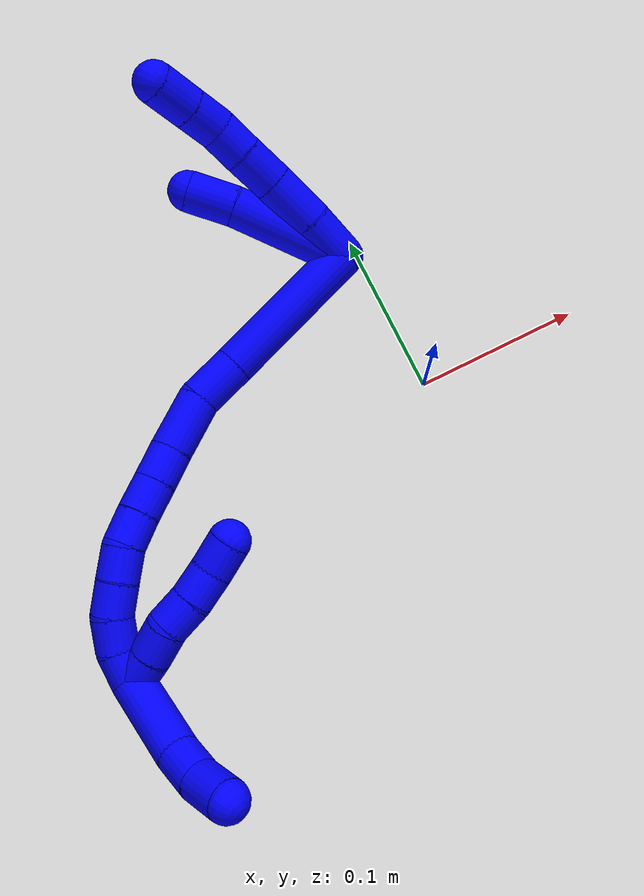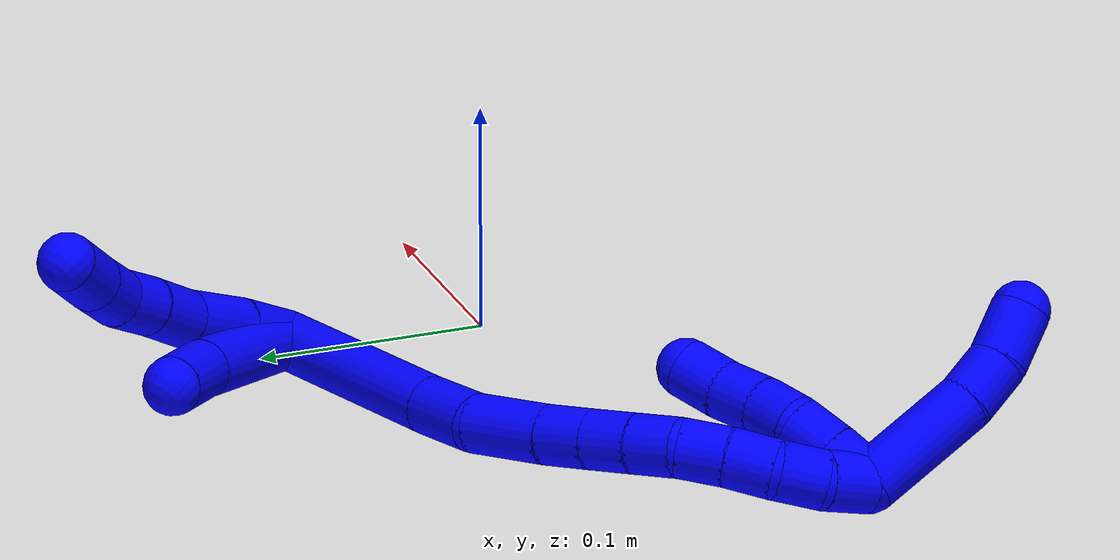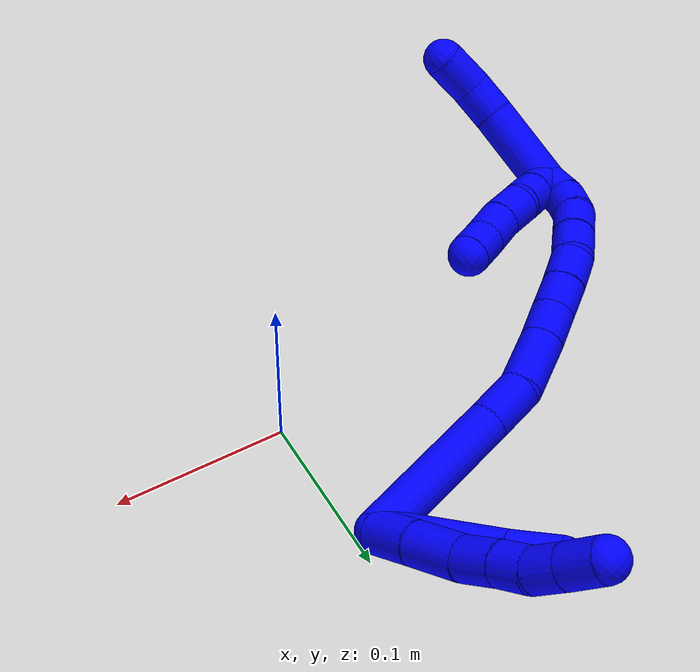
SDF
<sdf version="1.7">
 <world name="default">
  <model name="1">
   <static>0</static>
   <link name="1">
    <collision name="collision-cylinder-e_1_2_8">
     <pose>0.006324 -0.010296 0.007687 0.929464 0.457334 0.232319</pose>
     <geometry><cylinder><radius>0.0125</radius><length>0.028642</length></cylinder></geometry>
     <surface>
      <friction><ode><mu>1.16</mu><mu2>1.16</mu2><slip1>0</slip1><slip2>0</slip2></ode></friction>
      <contact><ode><kp>1e+06</kp><kd>1</kd><max_vel>0</max_vel><min_depth>0.001</min_depth></ode></contact>
     </surface>
    </collision>
    <visual name="visual-cylinder-e_1_2_8">
     <pose>0.006324 -0.010296 0.007687 0.929464 0.457334 0.232319</pose>
     <geometry><cylinder><radius>0.0125</radius><length>0.028642</length></cylinder></geometry>
     <material><ambient>0 0 1 1</ambient></material>
    </visual>
    <collision name="collision-cylinder-e_2_8_9">
     <pose>0.01892 -0.031805 0.025046 0.859056 0.400668 0.185487</pose>
     <geometry><cylinder><radius>0.0125</radius><length>0.032163</length></cylinder></geometry>
     <surface>
      <friction><ode><mu>1.16</mu><mu2>1.16</mu2><slip1>0</slip1><slip2>0</slip2></ode></friction>
      <contact><ode><kp>1e+06</kp><kd>1</kd><max_vel>0</max_vel><min_depth>0.001</min_depth></ode></contact>
     </surface>
    </collision>
    <visual name="visual-cylinder-e_2_8_9">
     <pose>0.01892 -0.031805 0.025046 0.859056 0.400668 0.185487</pose>
     <geometry><cylinder><radius>0.0125</radius><length>0.032163</length></cylinder></geometry>
     <material><ambient>0 0 1 1</ambient></material>
    </visual>
    <collision name="collision-cylinder-e_3_9_10">
     <pose>0.029499 -0.052679 0.040673 1.0184 0.362728 0.204054</pose>
     <geometry><cylinder><radius>0.0125</radius><length>0.024278</length></cylinder></geometry>
     <surface>
      <friction><ode><mu>1.16</mu><mu2>1.16</mu2><slip1>0</slip1><slip2>0</slip2></ode></friction>
      <contact><ode><kp>1e+06</kp><kd>1</kd><max_vel>0</max_vel><min_depth>0.001</min_depth></ode></contact>
     </surface>
    </collision>
    <visual name="visual-cylinder-e_3_9_10">
     <pose>0.029499 -0.052679 0.040673 1.0184 0.362728 0.204054</pose>
     <geometry><cylinder><radius>0.0125</radius><length>0.024278</length></cylinder></geometry>
     <material><ambient>0 0 1 1</ambient></material>
    </visual>
    <collision name="collision-cylinder-e_4_10_11">
     <pose>0.037602 -0.069927 0.052034 0.951741 0.386915 0.201249</pose>
     <geometry><cylinder><radius>0.0125</radius><length>0.020117</length></cylinder></geometry>
     <surface>
      <friction><ode><mu>1.16</mu><mu2>1.16</mu2><slip1>0</slip1><slip2>0</slip2></ode></friction>
      <contact><ode><kp>1e+06</kp><kd>1</kd><max_vel>0</max_vel><min_depth>0.001</min_depth></ode></contact>
     </surface>
    </collision>
    <visual name="visual-cylinder-e_4_10_11">
     <pose>0.037602 -0.069927 0.052034 0.951741 0.386915 0.201249</pose>
     <geometry><cylinder><radius>0.0125</radius><length>0.020117</length></cylinder></geometry>
     <material><ambient>0 0 1 1</ambient></material>
    </visual>
    <collision name="collision-cylinder-e_5_11_12">
     <pose>0.043876 -0.086942 0.061214 1.18991 0.239373 0.162417</pose>
     <geometry><cylinder><radius>0.0125</radius><length>0.020909</length></cylinder></geometry>
     <surface>
      <friction><ode><mu>1.16</mu><mu2>1.16</mu2><slip1>0</slip1><slip2>0</slip2></ode></friction>
      <contact><ode><kp>1e+06</kp><kd>1</kd><max_vel>0</max_vel><min_depth>0.001</min_depth></ode></contact>
     </surface>
    </collision>
    <visual name="visual-cylinder-e_5_11_12">
     <pose>0.043876 -0.086942 0.061214 1.18991 0.239373 0.162417</pose>
     <geometry><cylinder><radius>0.0125</radius><length>0.020909</length></cylinder></geometry>
     <material><ambient>0 0 1 1</ambient></material>
    </visual>
    <collision name="collision-cylinder-e_6_12_6">
     <pose>0.049162 -0.107298 0.068914 1.22608 0.237268 0.167304</pose>
     <geometry><cylinder><radius>0.0125</radius><length>0.023891</length></cylinder></geometry>
     <surface>
      <friction><ode><mu>1.16</mu><mu2>1.16</mu2><slip1>0</slip1><slip2>0</slip2></ode></friction>
      <contact><ode><kp>1e+06</kp><kd>1</kd><max_vel>0</max_vel><min_depth>0.001</min_depth></ode></contact>
     </surface>
    </collision>
    <visual name="visual-cylinder-e_6_12_6">
     <pose>0.049162 -0.107298 0.068914 1.22608 0.237268 0.167304</pose>
     <geometry><cylinder><radius>0.0125</radius><length>0.023891</length></cylinder></geometry>
     <material><ambient>0 0 1 1</ambient></material>
    </visual>
    <collision name="collision-cylinder-e_1_2_13">
     <pose>0.001615 -0.024244 0.025906 0.75226 0.045493 0.017969</pose>
     <geometry><cylinder><radius>0.0125</radius><length>0.071036</length></cylinder></geometry>
     <surface>
      <friction><ode><mu>1.16</mu><mu2>1.16</mu2><slip1>0</slip1><slip2>0</slip2></ode></friction>
      <contact><ode><kp>1e+06</kp><kd>1</kd><max_vel>0</max_vel><min_depth>0.001</min_depth></ode></contact>
     </surface>
    </collision>
    <visual name="visual-cylinder-e_1_2_13">
     <pose>0.001615 -0.024244 0.025906 0.75226 0.045493 0.017969</pose>
     <geometry><cylinder><radius>0.0125</radius><length>0.071036</length></cylinder></geometry>
     <material><ambient>0 0 1 1</ambient></material>
    </visual>
    <collision name="collision-cylinder-e_2_13_5">
     <pose>0.002311 -0.05822 0.062498 0.738795 -0.063538 -0.024607</pose>
     <geometry><cylinder><radius>0.0125</radius><length>0.028964</length></cylinder></geometry>
     <surface>
      <friction><ode><mu>1.16</mu><mu2>1.16</mu2><slip1>0</slip1><slip2>0</slip2></ode></friction>
      <contact><ode><kp>1e+06</kp><kd>1</kd><max_vel>0</max_vel><min_depth>0.001</min_depth></ode></contact>
     </surface>
    </collision>
    <visual name="visual-cylinder-e_2_13_5">
     <pose>0.002311 -0.05822 0.062498 0.738795 -0.063538 -0.024607</pose>
     <geometry><cylinder><radius>0.0125</radius><length>0.028964</length></cylinder></geometry>
     <material><ambient>0 0 1 1</ambient></material>
    </visual>
    <collision name="collision-cylinder-e_1_2_14">
     <pose>-0.041233 -0.022362 0.004856 1.35695 -1.06414 -0.88621</pose>
     <geometry><cylinder><radius>0.0125</radius><length>0.094314</length></cylinder></geometry>
     <surface>
      <friction><ode><mu>1.16</mu><mu2>1.16</mu2><slip1>0</slip1><slip2>0</slip2></ode></friction>
      <contact><ode><kp>1e+06</kp><kd>1</kd><max_vel>0</max_vel><min_depth>0.001</min_depth></ode></contact>
     </surface>
    </collision>
    <visual name="visual-cylinder-e_1_2_14">
     <pose>-0.041233 -0.022362 0.004856 1.35695 -1.06414 -0.88621</pose>
     <geometry><cylinder><radius>0.0125</radius><length>0.094314</length></cylinder></geometry>
     <material><ambient>0 0 1 1</ambient></material>
    </visual>
    <collision name="collision-cylinder-e_2_14_15">
     <pose>-0.094902 -0.052241 0.010937 1.40932 -1.0213 -0.889077</pose>
     <geometry><cylinder><radius>0.0125</radius><length>0.029167</length></cylinder></geometry>
     <surface>
      <friction><ode><mu>1.16</mu><mu2>1.16</mu2><slip1>0</slip1><slip2>0</slip2></ode></friction>
      <contact><ode><kp>1e+06</kp><kd>1</kd><max_vel>0</max_vel><min_depth>0.001</min_depth></ode></contact>
     </surface>
    </collision>
    <visual name="visual-cylinder-e_2_14_15">
     <pose>-0.094902 -0.052241 0.010937 1.40932 -1.0213 -0.889077</pose>
     <geometry><cylinder><radius>0.0125</radius><length>0.029167</length></cylinder></geometry>
     <material><ambient>0 0 1 1</ambient></material>
    </visual>
    <collision name="collision-cylinder-e_3_15_16">
     <pose>-0.123029 -0.06656 0.008817 2.02779 -1.12083 -1.57862</pose>
     <geometry><cylinder><radius>0.0125</radius><length>0.03485</length></cylinder></geometry>
     <surface>
      <friction><ode><mu>1.16</mu><mu2>1.16</mu2><slip1>0</slip1><slip2>0</slip2></ode></friction>
      <contact><ode><kp>1e+06</kp><kd>1</kd><max_vel>0</max_vel><min_depth>0.001</min_depth></ode></contact>
     </surface>
    </collision>
    <visual name="visual-cylinder-e_3_15_16">
     <pose>-0.123029 -0.06656 0.008817 2.02779 -1.12083 -1.57862</pose>
     <geometry><cylinder><radius>0.0125</radius><length>0.03485</length></cylinder></geometry>
     <material><ambient>0 0 1 1</ambient></material>
    </visual>
    <collision name="collision-cylinder-e_4_16_17">
     <pose>-0.148048 -0.077518 0.002904 2.12435 -1.08823 -1.65244</pose>
     <geometry><cylinder><radius>0.0125</radius><length>0.021062</length></cylinder></geometry>
     <surface>
      <friction><ode><mu>1.16</mu><mu2>1.16</mu2><slip1>0</slip1><slip2>0</slip2></ode></friction>
      <contact><ode><kp>1e+06</kp><kd>1</kd><max_vel>0</max_vel><min_depth>0.001</min_depth></ode></contact>
     </surface>
    </collision>
    <visual name="visual-cylinder-e_4_16_17">
     <pose>-0.148048 -0.077518 0.002904 2.12435 -1.08823 -1.65244</pose>
     <geometry><cylinder><radius>0.0125</radius><length>0.021062</length></cylinder></geometry>
     <material><ambient>0 0 1 1</ambient></material>
    </visual>
    <collision name="collision-cylinder-e_5_17_18">
     <pose>-0.166395 -0.085851 -0.002136 2.10508 -1.07724 -1.61755</pose>
     <geometry><cylinder><radius>0.0125</radius><length>0.020482</length></cylinder></geometry>
     <surface>
      <friction><ode><mu>1.16</mu><mu2>1.16</mu2><slip1>0</slip1><slip2>0</slip2></ode></friction>
      <contact><ode><kp>1e+06</kp><kd>1</kd><max_vel>0</max_vel><min_depth>0.001</min_depth></ode></contact>
     </surface>
    </collision>
    <visual name="visual-cylinder-e_5_17_18">
     <pose>-0.166395 -0.085851 -0.002136 2.10508 -1.07724 -1.61755</pose>
     <geometry><cylinder><radius>0.0125</radius><length>0.020482</length></cylinder></geometry>
     <material><ambient>0 0 1 1</ambient></material>
    </visual>
    <collision name="collision-cylinder-e_6_18_19">
     <pose>-0.184355 -0.09371 -0.007354 2.21157 -1.09602 -1.76561</pose>
     <geometry><cylinder><radius>0.0125</radius><length>0.020107</length></cylinder></geometry>
     <surface>
      <friction><ode><mu>1.16</mu><mu2>1.16</mu2><slip1>0</slip1><slip2>0</slip2></ode></friction>
      <contact><ode><kp>1e+06</kp><kd>1</kd><max_vel>0</max_vel><min_depth>0.001</min_depth></ode></contact>
     </surface>
    </collision>
    <visual name="visual-cylinder-e_6_18_19">
     <pose>-0.184355 -0.09371 -0.007354 2.21157 -1.09602 -1.76561</pose>
     <geometry><cylinder><radius>0.0125</radius><length>0.020107</length></cylinder></geometry>
     <material><ambient>0 0 1 1</ambient></material>
    </visual>
    <collision name="collision-cylinder-e_7_19_20">
     <pose>-0.202646 -0.098268 -0.013559 2.894 -1.20641 -2.78418</pose>
     <geometry><cylinder><radius>0.0125</radius><length>0.020014</length></cylinder></geometry>
     <surface>
      <friction><ode><mu>1.16</mu><mu2>1.16</mu2><slip1>0</slip1><slip2>0</slip2></ode></friction>
      <contact><ode><kp>1e+06</kp><kd>1</kd><max_vel>0</max_vel><min_depth>0.001</min_depth></ode></contact>
     </surface>
    </collision>
    <visual name="visual-cylinder-e_7_19_20">
     <pose>-0.202646 -0.098268 -0.013559 2.894 -1.20641 -2.78418</pose>
     <geometry><cylinder><radius>0.0125</radius><length>0.020014</length></cylinder></geometry>
     <material><ambient>0 0 1 1</ambient></material>
    </visual>
    <collision name="collision-cylinder-e_8_20_21">
     <pose>-0.221519 -0.099381 -0.020061 3.0634 -1.26046 -3.03446</pose>
     <geometry><cylinder><radius>0.0125</radius><length>0.02</length></cylinder></geometry>
     <surface>
      <friction><ode><mu>1.16</mu><mu2>1.16</mu2><slip1>0</slip1><slip2>0</slip2></ode></friction>
      <contact><ode><kp>1e+06</kp><kd>1</kd><max_vel>0</max_vel><min_depth>0.001</min_depth></ode></contact>
     </surface>
    </collision>
    <visual name="visual-cylinder-e_8_20_21">
     <pose>-0.221519 -0.099381 -0.020061 3.0634 -1.26046 -3.03446</pose>
     <geometry><cylinder><radius>0.0125</radius><length>0.02</length></cylinder></geometry>
     <material><ambient>0 0 1 1</ambient></material>
    </visual>
    <collision name="collision-cylinder-e_9_21_22">
     <pose>-0.239585 -0.097289 -0.027752 -2.67677 -1.02422 2.34454</pose>
     <geometry><cylinder><radius>0.0125</radius><length>0.020002</length></cylinder></geometry>
     <surface>
      <friction><ode><mu>1.16</mu><mu2>1.16</mu2><slip1>0</slip1><slip2>0</slip2></ode></friction>
      <contact><ode><kp>1e+06</kp><kd>1</kd><max_vel>0</max_vel><min_depth>0.001</min_depth></ode></contact>
     </surface>
    </collision>
    <visual name="visual-cylinder-e_9_21_22">
     <pose>-0.239585 -0.097289 -0.027752 -2.67677 -1.02422 2.34454</pose>
     <geometry><cylinder><radius>0.0125</radius><length>0.020002</length></cylinder></geometry>
     <material><ambient>0 0 1 1</ambient></material>
    </visual>
    <collision name="collision-cylinder-e_10_22_1">
     <pose>-0.254886 -0.091223 -0.038755 -2.61025 -0.741884 1.92069</pose>
     <geometry><cylinder><radius>0.0125</radius><length>0.020003</length></cylinder></geometry>
     <surface>
      <friction><ode><mu>1.16</mu><mu2>1.16</mu2><slip1>0</slip1><slip2>0</slip2></ode></friction>
      <contact><ode><kp>1e+06</kp><kd>1</kd><max_vel>0</max_vel><min_depth>0.001</min_depth></ode></contact>
     </surface>
    </collision>
    <visual name="visual-cylinder-e_10_22_1">
     <pose>-0.254886 -0.091223 -0.038755 -2.61025 -0.741884 1.92069</pose>
     <geometry><cylinder><radius>0.0125</radius><length>0.020003</length></cylinder></geometry>
     <material><ambient>0 0 1 1</ambient></material>
    </visual>
    <collision name="collision-cylinder-e_1_1_23">
     <pose>-0.267638 -0.088844 -0.071177 3.08957 -0.225732 -2.69038</pose>
     <geometry><cylinder><radius>0.0125</radius><length>0.05356</length></cylinder></geometry>
     <surface>
      <friction><ode><mu>1.16</mu><mu2>1.16</mu2><slip1>0</slip1><slip2>0</slip2></ode></friction>
      <contact><ode><kp>1e+06</kp><kd>1</kd><max_vel>0</max_vel><min_depth>0.001</min_depth></ode></contact>
     </surface>
    </collision>
    <visual name="visual-cylinder-e_1_1_23">
     <pose>-0.267638 -0.088844 -0.071177 3.08957 -0.225732 -2.69038</pose>
     <geometry><cylinder><radius>0.0125</radius><length>0.05356</length></cylinder></geometry>
     <material><ambient>0 0 1 1</ambient></material>
    </visual>
    <collision name="collision-cylinder-e_2_23_24">
     <pose>-0.274195 -0.091274 -0.108071 3.04282 -0.051679 -0.963605</pose>
     <geometry><cylinder><radius>0.0125</radius><length>0.021794</length></cylinder></geometry>
     <surface>
      <friction><ode><mu>1.16</mu><mu2>1.16</mu2><slip1>0</slip1><slip2>0</slip2></ode></friction>
      <contact><ode><kp>1e+06</kp><kd>1</kd><max_vel>0</max_vel><min_depth>0.001</min_depth></ode></contact>
     </surface>
    </collision>
    <visual name="visual-cylinder-e_2_23_24">
     <pose>-0.274195 -0.091274 -0.108071 3.04282 -0.051679 -0.963605</pose>
     <geometry><cylinder><radius>0.0125</radius><length>0.021794</length></cylinder></geometry>
     <material><ambient>0 0 1 1</ambient></material>
    </visual>
    <collision name="collision-cylinder-e_3_24_4">
     <pose>-0.272412 -0.093971 -0.130889 3.00704 0.191566 1.91839</pose>
     <geometry><cylinder><radius>0.0125</radius><length>0.024646</length></cylinder></geometry>
     <surface>
      <friction><ode><mu>1.16</mu><mu2>1.16</mu2><slip1>0</slip1><slip2>0</slip2></ode></friction>
      <contact><ode><kp>1e+06</kp><kd>1</kd><max_vel>0</max_vel><min_depth>0.001</min_depth></ode></contact>
     </surface>
    </collision>
    <visual name="visual-cylinder-e_3_24_4">
     <pose>-0.272412 -0.093971 -0.130889 3.00704 0.191566 1.91839</pose>
     <geometry><cylinder><radius>0.0125</radius><length>0.024646</length></cylinder></geometry>
     <material><ambient>0 0 1 1</ambient></material>
    </visual>
    <collision name="collision-cylinder-e_1_1_25">
     <pose>-0.251868 -0.086678 -0.047054 -2.74661 1.35879 -2.65587</pose>
     <geometry><cylinder><radius>0.0125</radius><length>0.02</length></cylinder></geometry>
     <surface>
      <friction><ode><mu>1.16</mu><mu2>1.16</mu2><slip1>0</slip1><slip2>0</slip2></ode></friction>
      <contact><ode><kp>1e+06</kp><kd>1</kd><max_vel>0</max_vel><min_depth>0.001</min_depth></ode></contact>
     </surface>
    </collision>
    <visual name="visual-cylinder-e_1_1_25">
     <pose>-0.251868 -0.086678 -0.047054 -2.74661 1.35879 -2.65587</pose>
     <geometry><cylinder><radius>0.0125</radius><length>0.02</length></cylinder></geometry>
     <material><ambient>0 0 1 1</ambient></material>
    </visual>
    <collision name="collision-cylinder-e_2_25_26">
     <pose>-0.232191 -0.085245 -0.050251 -2.68117 1.43023 -2.61442</pose>
     <geometry><cylinder><radius>0.0125</radius><length>0.02</length></cylinder></geometry>
     <surface>
      <friction><ode><mu>1.16</mu><mu2>1.16</mu2><slip1>0</slip1><slip2>0</slip2></ode></friction>
      <contact><ode><kp>1e+06</kp><kd>1</kd><max_vel>0</max_vel><min_depth>0.001</min_depth></ode></contact>
     </surface>
    </collision>
    <visual name="visual-cylinder-e_2_25_26">
     <pose>-0.232191 -0.085245 -0.050251 -2.68117 1.43023 -2.61442</pose>
     <geometry><cylinder><radius>0.0125</radius><length>0.02</length></cylinder></geometry>
     <material><ambient>0 0 1 1</ambient></material>
    </visual>
    <collision name="collision-cylinder-e_3_26_27">
     <pose>-0.213159 -0.0808 -0.052926 -1.92635 1.15075 -1.50117</pose>
     <geometry><cylinder><radius>0.0125</radius><length>0.02</length></cylinder></geometry>
     <surface>
      <friction><ode><mu>1.16</mu><mu2>1.16</mu2><slip1>0</slip1><slip2>0</slip2></ode></friction>
      <contact><ode><kp>1e+06</kp><kd>1</kd><max_vel>0</max_vel><min_depth>0.001</min_depth></ode></contact>
     </surface>
    </collision>
    <visual name="visual-cylinder-e_3_26_27">
     <pose>-0.213159 -0.0808 -0.052926 -1.92635 1.15075 -1.50117</pose>
     <geometry><cylinder><radius>0.0125</radius><length>0.02</length></cylinder></geometry>
     <material><ambient>0 0 1 1</ambient></material>
    </visual>
    <collision name="collision-cylinder-e_4_27_28">
     <pose>-0.194576 -0.073713 -0.054438 -1.59928 1.23815 -1.2652</pose>
     <geometry><cylinder><radius>0.0125</radius><length>0.02</length></cylinder></geometry>
     <surface>
      <friction><ode><mu>1.16</mu><mu2>1.16</mu2><slip1>0</slip1><slip2>0</slip2></ode></friction>
      <contact><ode><kp>1e+06</kp><kd>1</kd><max_vel>0</max_vel><min_depth>0.001</min_depth></ode></contact>
     </surface>
    </collision>
    <visual name="visual-cylinder-e_4_27_28">
     <pose>-0.194576 -0.073713 -0.054438 -1.59928 1.23815 -1.2652</pose>
     <geometry><cylinder><radius>0.0125</radius><length>0.02</length></cylinder></geometry>
     <material><ambient>0 0 1 1</ambient></material>
    </visual>
    <collision name="collision-cylinder-e_5_28_3">
     <pose>-0.175322 -0.068559 -0.055116 -1.87062 1.37171 -1.67462</pose>
     <geometry><cylinder><radius>0.0125</radius><length>0.02</length></cylinder></geometry>
     <surface>
      <friction><ode><mu>1.16</mu><mu2>1.16</mu2><slip1>0</slip1><slip2>0</slip2></ode></friction>
      <contact><ode><kp>1e+06</kp><kd>1</kd><max_vel>0</max_vel><min_depth>0.001</min_depth></ode></contact>
     </surface>
    </collision>
    <visual name="visual-cylinder-e_5_28_3">
     <pose>-0.175322 -0.068559 -0.055116 -1.87062 1.37171 -1.67462</pose>
     <geometry><cylinder><radius>0.0125</radius><length>0.02</length></cylinder></geometry>
     <material><ambient>0 0 1 1</ambient></material>
    </visual>
    <collision name="collision-sphere-3">
     <pose>-0.165519 -0.066669 -0.0557 0 -0 0</pose>
     <geometry><sphere><radius>0.0125</radius></sphere></geometry>
     <surface>
      <friction><ode><mu>1.16</mu><mu2>1.16</mu2><slip1>0</slip1><slip2>0</slip2></ode></friction>
      <contact><ode><kp>1e+06</kp><kd>1</kd><max_vel>0</max_vel><min_depth>0.001</min_depth></ode></contact>
     </surface>
    </collision>
    <visual name="visual-sphere-3">
     <pose>-0.165519 -0.066669 -0.0557 0 -0 0</pose>
     <geometry><sphere><radius>0.0125</radius></sphere></geometry>
     <material><ambient>0 0 1 1</ambient></material>
    </visual>
    <collision name="collision-sphere-28">
     <pose>-0.185124 -0.070448 -0.054531 0 -0 0</pose>
     <geometry><sphere><radius>0.0125</radius></sphere></geometry>
     <surface>
      <friction><ode><mu>1.16</mu><mu2>1.16</mu2><slip1>0</slip1><slip2>0</slip2></ode></friction>
      <contact><ode><kp>1e+06</kp><kd>1</kd><max_vel>0</max_vel><min_depth>0.001</min_depth></ode></contact>
     </surface>
    </collision>
    <visual name="visual-sphere-28">
     <pose>-0.185124 -0.070448 -0.054531 0 -0 0</pose>
     <geometry><sphere><radius>0.0125</radius></sphere></geometry>
     <material><ambient>0 0 1 1</ambient></material>
    </visual>
    <collision name="collision-sphere-27">
     <pose>-0.204028 -0.076977 -0.054345 0 -0 0</pose>
     <geometry><sphere><radius>0.0125</radius></sphere></geometry>
     <surface>
      <friction><ode><mu>1.16</mu><mu2>1.16</mu2><slip1>0</slip1><slip2>0</slip2></ode></friction>
      <contact><ode><kp>1e+06</kp><kd>1</kd><max_vel>0</max_vel><min_depth>0.001</min_depth></ode></contact>
     </surface>
    </collision>
    <visual name="visual-sphere-27">
     <pose>-0.204028 -0.076977 -0.054345 0 -0 0</pose>
     <geometry><sphere><radius>0.0125</radius></sphere></geometry>
     <material><ambient>0 0 1 1</ambient></material>
    </visual>
    <collision name="collision-sphere-26">
     <pose>-0.222289 -0.084623 -0.051506 0 -0 0</pose>
     <geometry><sphere><radius>0.0125</radius></sphere></geometry>
     <surface>
      <friction><ode><mu>1.16</mu><mu2>1.16</mu2><slip1>0</slip1><slip2>0</slip2></ode></friction>
      <contact><ode><kp>1e+06</kp><kd>1</kd><max_vel>0</max_vel><min_depth>0.001</min_depth></ode></contact>
     </surface>
    </collision>
    <visual name="visual-sphere-26">
     <pose>-0.222289 -0.084623 -0.051506 0 -0 0</pose>
     <geometry><sphere><radius>0.0125</radius></sphere></geometry>
     <material><ambient>0 0 1 1</ambient></material>
    </visual>
    <collision name="collision-sphere-25">
     <pose>-0.242092 -0.085868 -0.048996 0 -0 0</pose>
     <geometry><sphere><radius>0.0125</radius></sphere></geometry>
     <surface>
      <friction><ode><mu>1.16</mu><mu2>1.16</mu2><slip1>0</slip1><slip2>0</slip2></ode></friction>
      <contact><ode><kp>1e+06</kp><kd>1</kd><max_vel>0</max_vel><min_depth>0.001</min_depth></ode></contact>
     </surface>
    </collision>
    <visual name="visual-sphere-25">
     <pose>-0.242092 -0.085868 -0.048996 0 -0 0</pose>
     <geometry><sphere><radius>0.0125</radius></sphere></geometry>
     <material><ambient>0 0 1 1</ambient></material>
    </visual>
    <collision name="collision-sphere-4">
     <pose>-0.270065 -0.095593 -0.142877 0 -0 0</pose>
     <geometry><sphere><radius>0.0125</radius></sphere></geometry>
     <surface>
      <friction><ode><mu>1.16</mu><mu2>1.16</mu2><slip1>0</slip1><slip2>0</slip2></ode></friction>
      <contact><ode><kp>1e+06</kp><kd>1</kd><max_vel>0</max_vel><min_depth>0.001</min_depth></ode></contact>
     </surface>
    </collision>
    <visual name="visual-sphere-4">
     <pose>-0.270065 -0.095593 -0.142877 0 -0 0</pose>
     <geometry><sphere><radius>0.0125</radius></sphere></geometry>
     <material><ambient>0 0 1 1</ambient></material>
    </visual>
    <collision name="collision-sphere-24">
     <pose>-0.274758 -0.092348 -0.118901 0 -0 0</pose>
     <geometry><sphere><radius>0.0125</radius></sphere></geometry>
     <surface>
      <friction><ode><mu>1.16</mu><mu2>1.16</mu2><slip1>0</slip1><slip2>0</slip2></ode></friction>
      <contact><ode><kp>1e+06</kp><kd>1</kd><max_vel>0</max_vel><min_depth>0.001</min_depth></ode></contact>
     </surface>
    </collision>
    <visual name="visual-sphere-24">
     <pose>-0.274758 -0.092348 -0.118901 0 -0 0</pose>
     <geometry><sphere><radius>0.0125</radius></sphere></geometry>
     <material><ambient>0 0 1 1</ambient></material>
    </visual>
    <collision name="collision-sphere-23">
     <pose>-0.273632 -0.090201 -0.097242 0 -0 0</pose>
     <geometry><sphere><radius>0.0125</radius></sphere></geometry>
     <surface>
      <friction><ode><mu>1.16</mu><mu2>1.16</mu2><slip1>0</slip1><slip2>0</slip2></ode></friction>
      <contact><ode><kp>1e+06</kp><kd>1</kd><max_vel>0</max_vel><min_depth>0.001</min_depth></ode></contact>
     </surface>
    </collision>
    <visual name="visual-sphere-23">
     <pose>-0.273632 -0.090201 -0.097242 0 -0 0</pose>
     <geometry><sphere><radius>0.0125</radius></sphere></geometry>
     <material><ambient>0 0 1 1</ambient></material>
    </visual>
    <collision name="collision-sphere-1">
     <pose>-0.261644 -0.087487 -0.045111 0 -0 0</pose>
     <geometry><sphere><radius>0.0125</radius></sphere></geometry>
     <surface>
      <friction><ode><mu>1.16</mu><mu2>1.16</mu2><slip1>0</slip1><slip2>0</slip2></ode></friction>
      <contact><ode><kp>1e+06</kp><kd>1</kd><max_vel>0</max_vel><min_depth>0.001</min_depth></ode></contact>
     </surface>
    </collision>
    <visual name="visual-sphere-1">
     <pose>-0.261644 -0.087487 -0.045111 0 -0 0</pose>
     <geometry><sphere><radius>0.0125</radius></sphere></geometry>
     <material><ambient>0 0 1 1</ambient></material>
    </visual>
    <collision name="collision-sphere-22">
     <pose>-0.248129 -0.094959 -0.032398 0 -0 0</pose>
     <geometry><sphere><radius>0.0125</radius></sphere></geometry>
     <surface>
      <friction><ode><mu>1.16</mu><mu2>1.16</mu2><slip1>0</slip1><slip2>0</slip2></ode></friction>
      <contact><ode><kp>1e+06</kp><kd>1</kd><max_vel>0</max_vel><min_depth>0.001</min_depth></ode></contact>
     </surface>
    </collision>
    <visual name="visual-sphere-22">
     <pose>-0.248129 -0.094959 -0.032398 0 -0 0</pose>
     <geometry><sphere><radius>0.0125</radius></sphere></geometry>
     <material><ambient>0 0 1 1</ambient></material>
    </visual>
    <collision name="collision-sphere-21">
     <pose>-0.231041 -0.099619 -0.023105 0 -0 0</pose>
     <geometry><sphere><radius>0.0125</radius></sphere></geometry>
     <surface>
      <friction><ode><mu>1.16</mu><mu2>1.16</mu2><slip1>0</slip1><slip2>0</slip2></ode></friction>
      <contact><ode><kp>1e+06</kp><kd>1</kd><max_vel>0</max_vel><min_depth>0.001</min_depth></ode></contact>
     </surface>
    </collision>
    <visual name="visual-sphere-21">
     <pose>-0.231041 -0.099619 -0.023105 0 -0 0</pose>
     <geometry><sphere><radius>0.0125</radius></sphere></geometry>
     <material><ambient>0 0 1 1</ambient></material>
    </visual>
    <collision name="collision-sphere-12">
     <pose>0.046354 -0.09637 0.06499 0 -0 0</pose>
     <geometry><sphere><radius>0.0125</radius></sphere></geometry>
     <surface>
      <friction><ode><mu>1.16</mu><mu2>1.16</mu2><slip1>0</slip1><slip2>0</slip2></ode></friction>
      <contact><ode><kp>1e+06</kp><kd>1</kd><max_vel>0</max_vel><min_depth>0.001</min_depth></ode></contact>
     </surface>
    </collision>
    <visual name="visual-sphere-12">
     <pose>0.046354 -0.09637 0.06499 0 -0 0</pose>
     <geometry><sphere><radius>0.0125</radius></sphere></geometry>
     <material><ambient>0 0 1 1</ambient></material>
    </visual>
    <collision name="collision-sphere-11">
     <pose>0.041397 -0.077513 0.057439 0 -0 0</pose>
     <geometry><sphere><radius>0.0125</radius></sphere></geometry>
     <surface>
      <friction><ode><mu>1.16</mu><mu2>1.16</mu2><slip1>0</slip1><slip2>0</slip2></ode></friction>
      <contact><ode><kp>1e+06</kp><kd>1</kd><max_vel>0</max_vel><min_depth>0.001</min_depth></ode></contact>
     </surface>
    </collision>
    <visual name="visual-sphere-11">
     <pose>0.041397 -0.077513 0.057439 0 -0 0</pose>
     <geometry><sphere><radius>0.0125</radius></sphere></geometry>
     <material><ambient>0 0 1 1</ambient></material>
    </visual>
    <collision name="collision-sphere-10">
     <pose>0.033806 -0.062341 0.046629 0 -0 0</pose>
     <geometry><sphere><radius>0.0125</radius></sphere></geometry>
     <surface>
      <friction><ode><mu>1.16</mu><mu2>1.16</mu2><slip1>0</slip1><slip2>0</slip2></ode></friction>
      <contact><ode><kp>1e+06</kp><kd>1</kd><max_vel>0</max_vel><min_depth>0.001</min_depth></ode></contact>
     </surface>
    </collision>
    <visual name="visual-sphere-10">
     <pose>0.033806 -0.062341 0.046629 0 -0 0</pose>
     <geometry><sphere><radius>0.0125</radius></sphere></geometry>
     <material><ambient>0 0 1 1</ambient></material>
    </visual>
    <collision name="collision-sphere-9">
     <pose>0.025192 -0.043018 0.034718 0 -0 0</pose>
     <geometry><sphere><radius>0.0125</radius></sphere></geometry>
     <surface>
      <friction><ode><mu>1.16</mu><mu2>1.16</mu2><slip1>0</slip1><slip2>0</slip2></ode></friction>
      <contact><ode><kp>1e+06</kp><kd>1</kd><max_vel>0</max_vel><min_depth>0.001</min_depth></ode></contact>
     </surface>
    </collision>
    <visual name="visual-sphere-9">
     <pose>0.025192 -0.043018 0.034718 0 -0 0</pose>
     <geometry><sphere><radius>0.0125</radius></sphere></geometry>
     <material><ambient>0 0 1 1</ambient></material>
    </visual>
    <collision name="collision-sphere-2">
     <geometry><sphere><radius>0.0125</radius></sphere></geometry>
     <surface>
      <friction><ode><mu>1.16</mu><mu2>1.16</mu2><slip1>0</slip1><slip2>0</slip2></ode></friction>
      <contact><ode><kp>1e+06</kp><kd>1</kd><max_vel>0</max_vel><min_depth>0.001</min_depth></ode></contact>
     </surface>
    </collision>
    <visual name="visual-sphere-2">
     <geometry><sphere><radius>0.0125</radius></sphere></geometry>
     <material><ambient>0 0 1 1</ambient></material>
    </visual>
    <collision name="collision-sphere-19">
     <pose>-0.193297 -0.097394 -0.010101 0 -0 0</pose>
     <geometry><sphere><radius>0.0125</radius></sphere></geometry>
     <surface>
      <friction><ode><mu>1.16</mu><mu2>1.16</mu2><slip1>0</slip1><slip2>0</slip2></ode></friction>
      <contact><ode><kp>1e+06</kp><kd>1</kd><max_vel>0</max_vel><min_depth>0.001</min_depth></ode></contact>
     </surface>
    </collision>
    <visual name="visual-sphere-19">
     <pose>-0.193297 -0.097394 -0.010101 0 -0 0</pose>
     <geometry><sphere><radius>0.0125</radius></sphere></geometry>
     <material><ambient>0 0 1 1</ambient></material>
    </visual>
    <collision name="collision-sphere-8">
     <pose>0.012647 -0.020592 0.015375 0 -0 0</pose>
     <geometry><sphere><radius>0.0125</radius></sphere></geometry>
     <surface>
      <friction><ode><mu>1.16</mu><mu2>1.16</mu2><slip1>0</slip1><slip2>0</slip2></ode></friction>
      <contact><ode><kp>1e+06</kp><kd>1</kd><max_vel>0</max_vel><min_depth>0.001</min_depth></ode></contact>
     </surface>
    </collision>
    <visual name="visual-sphere-8">
     <pose>0.012647 -0.020592 0.015375 0 -0 0</pose>
     <geometry><sphere><radius>0.0125</radius></sphere></geometry>
     <material><ambient>0 0 1 1</ambient></material>
    </visual>
    <collision name="collision-sphere-6">
     <pose>0.05197 -0.118226 0.072837 0 -0 0</pose>
     <geometry><sphere><radius>0.0125</radius></sphere></geometry>
     <surface>
      <friction><ode><mu>1.16</mu><mu2>1.16</mu2><slip1>0</slip1><slip2>0</slip2></ode></friction>
      <contact><ode><kp>1e+06</kp><kd>1</kd><max_vel>0</max_vel><min_depth>0.001</min_depth></ode></contact>
     </surface>
    </collision>
    <visual name="visual-sphere-6">
     <pose>0.05197 -0.118226 0.072837 0 -0 0</pose>
     <geometry><sphere><radius>0.0125</radius></sphere></geometry>
     <material><ambient>0 0 1 1</ambient></material>
    </visual>
    <collision name="collision-sphere-13">
     <pose>0.003231 -0.048488 0.051813 0 -0 0</pose>
     <geometry><sphere><radius>0.0125</radius></sphere></geometry>
     <surface>
      <friction><ode><mu>1.16</mu><mu2>1.16</mu2><slip1>0</slip1><slip2>0</slip2></ode></friction>
      <contact><ode><kp>1e+06</kp><kd>1</kd><max_vel>0</max_vel><min_depth>0.001</min_depth></ode></contact>
     </surface>
    </collision>
    <visual name="visual-sphere-13">
     <pose>0.003231 -0.048488 0.051813 0 -0 0</pose>
     <geometry><sphere><radius>0.0125</radius></sphere></geometry>
     <material><ambient>0 0 1 1</ambient></material>
    </visual>
    <collision name="collision-sphere-5">
     <pose>0.001391 -0.067953 0.073182 0 -0 0</pose>
     <geometry><sphere><radius>0.0125</radius></sphere></geometry>
     <surface>
      <friction><ode><mu>1.16</mu><mu2>1.16</mu2><slip1>0</slip1><slip2>0</slip2></ode></friction>
      <contact><ode><kp>1e+06</kp><kd>1</kd><max_vel>0</max_vel><min_depth>0.001</min_depth></ode></contact>
     </surface>
    </collision>
    <visual name="visual-sphere-5">
     <pose>0.001391 -0.067953 0.073182 0 -0 0</pose>
     <geometry><sphere><radius>0.0125</radius></sphere></geometry>
     <material><ambient>0 0 1 1</ambient></material>
    </visual>
    <collision name="collision-sphere-14">
     <pose>-0.082465 -0.044724 0.009712 0 -0 0</pose>
     <geometry><sphere><radius>0.0125</radius></sphere></geometry>
     <surface>
      <friction><ode><mu>1.16</mu><mu2>1.16</mu2><slip1>0</slip1><slip2>0</slip2></ode></friction>
      <contact><ode><kp>1e+06</kp><kd>1</kd><max_vel>0</max_vel><min_depth>0.001</min_depth></ode></contact>
     </surface>
    </collision>
    <visual name="visual-sphere-14">
     <pose>-0.082465 -0.044724 0.009712 0 -0 0</pose>
     <geometry><sphere><radius>0.0125</radius></sphere></geometry>
     <material><ambient>0 0 1 1</ambient></material>
    </visual>
    <collision name="collision-sphere-15">
     <pose>-0.107339 -0.059759 0.012161 0 -0 0</pose>
     <geometry><sphere><radius>0.0125</radius></sphere></geometry>
     <surface>
      <friction><ode><mu>1.16</mu><mu2>1.16</mu2><slip1>0</slip1><slip2>0</slip2></ode></friction>
      <contact><ode><kp>1e+06</kp><kd>1</kd><max_vel>0</max_vel><min_depth>0.001</min_depth></ode></contact>
     </surface>
    </collision>
    <visual name="visual-sphere-15">
     <pose>-0.107339 -0.059759 0.012161 0 -0 0</pose>
     <geometry><sphere><radius>0.0125</radius></sphere></geometry>
     <material><ambient>0 0 1 1</ambient></material>
    </visual>
    <collision name="collision-sphere-16">
     <pose>-0.13872 -0.073361 0.005473 0 -0 0</pose>
     <geometry><sphere><radius>0.0125</radius></sphere></geometry>
     <surface>
      <friction><ode><mu>1.16</mu><mu2>1.16</mu2><slip1>0</slip1><slip2>0</slip2></ode></friction>
      <contact><ode><kp>1e+06</kp><kd>1</kd><max_vel>0</max_vel><min_depth>0.001</min_depth></ode></contact>
     </surface>
    </collision>
    <visual name="visual-sphere-16">
     <pose>-0.13872 -0.073361 0.005473 0 -0 0</pose>
     <geometry><sphere><radius>0.0125</radius></sphere></geometry>
     <material><ambient>0 0 1 1</ambient></material>
    </visual>
    <collision name="collision-sphere-17">
     <pose>-0.157376 -0.081675 0.000335 0 -0 0</pose>
     <geometry><sphere><radius>0.0125</radius></sphere></geometry>
     <surface>
      <friction><ode><mu>1.16</mu><mu2>1.16</mu2><slip1>0</slip1><slip2>0</slip2></ode></friction>
      <contact><ode><kp>1e+06</kp><kd>1</kd><max_vel>0</max_vel><min_depth>0.001</min_depth></ode></contact>
     </surface>
    </collision>
    <visual name="visual-sphere-17">
     <pose>-0.157376 -0.081675 0.000335 0 -0 0</pose>
     <geometry><sphere><radius>0.0125</radius></sphere></geometry>
     <material><ambient>0 0 1 1</ambient></material>
    </visual>
    <collision name="collision-sphere-18">
     <pose>-0.175414 -0.090026 -0.004606 0 -0 0</pose>
     <geometry><sphere><radius>0.0125</radius></sphere></geometry>
     <surface>
      <friction><ode><mu>1.16</mu><mu2>1.16</mu2><slip1>0</slip1><slip2>0</slip2></ode></friction>
      <contact><ode><kp>1e+06</kp><kd>1</kd><max_vel>0</max_vel><min_depth>0.001</min_depth></ode></contact>
     </surface>
    </collision>
    <visual name="visual-sphere-18">
     <pose>-0.175414 -0.090026 -0.004606 0 -0 0</pose>
     <geometry><sphere><radius>0.0125</radius></sphere></geometry>
     <material><ambient>0 0 1 1</ambient></material>
    </visual>
    <collision name="collision-sphere-20">
     <pose>-0.211996 -0.099142 -0.017016 0 -0 0</pose>
     <geometry><sphere><radius>0.0125</radius></sphere></geometry>
     <surface>
      <friction><ode><mu>1.16</mu><mu2>1.16</mu2><slip1>0</slip1><slip2>0</slip2></ode></friction>
      <contact><ode><kp>1e+06</kp><kd>1</kd><max_vel>0</max_vel><min_depth>0.001</min_depth></ode></contact>
     </surface>
    </collision>
    <visual name="visual-sphere-20">
     <pose>-0.211996 -0.099142 -0.017016 0 -0 0</pose>
     <geometry><sphere><radius>0.0125</radius></sphere></geometry>
     <material><ambient>0 0 1 1</ambient></material>
    </visual>
    <inertial>
     <pose>-0.11118 -0.063613 -0.008002 0 -0 0</pose>
     <mass>0.75</mass>
     <inertia><ixx>1.2e-05</ixx><ixy>0</ixy><ixz>0</ixz><iyy>7.2e-05</iyy><iyz>0</iyz><izz>0.000144</izz></inertia>
    </inertial>
   </link>
   <pose>-0.009073 0.091169 0.011429 -2.13744 -0.363355 0.70055</pose>
  </model>
 </world>
</sdf>
